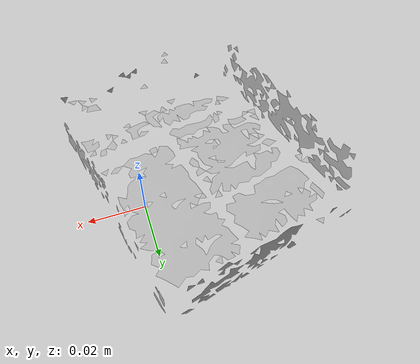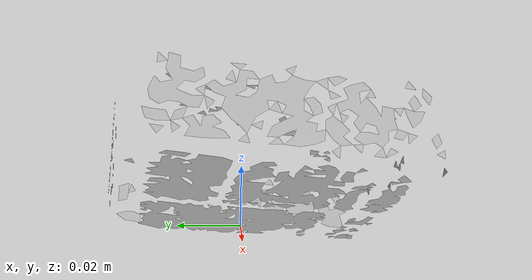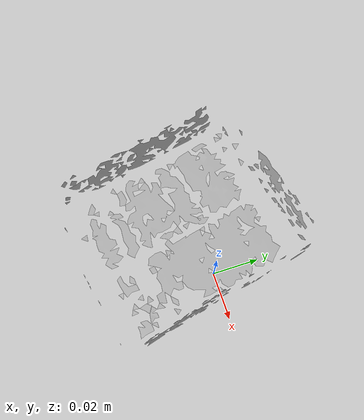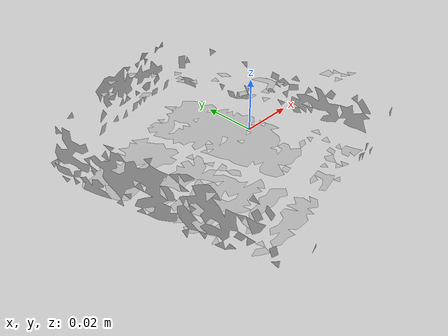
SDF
<?xml version="1.0" ?>
<sdf version="1.4">
  <model name='ycb_009_gelatin_box'>
    <link name='body'>
      <inertial>
        <mass>0.097</mass>
        <pose>-0.0226755178965 -0.00786020325383 0.0138779660098 0 0 0</pose>
        <inertia>
          <ixx>6.56000902648e-05</ixx>
          <ixy>4.2674628265e-06</ixy>
          <ixz>1.31078099224e-07</ixz>
          <iyy>4.81981716727e-05</iyy>
          <iyz>-2.51763363558e-07</iyz>
          <izz>0.000101384489225</izz>
        </inertia>
      </inertial>
      <visual name='ycb_009_gelatin_box_visual'>
        <pose>0 0 0 0 0 0</pose>
        <geometry>
          <mesh>
            <uri>model://ycb_009_gelatin_box/meshes/textured.dae</uri>
          </mesh>
        </geometry>
      </visual>
      <collision name='ycb_009_gelatin_box_collision'>
        <pose>0 0 0 0 0 0</pose>
        <geometry>
          <mesh>
            <uri>model://ycb_009_gelatin_box/meshes/nontextured.stl</uri>
          </mesh>
        </geometry>
        <max_contacts>10</max_contacts>
      </collision>
    </link>
  </model>
</sdf>
